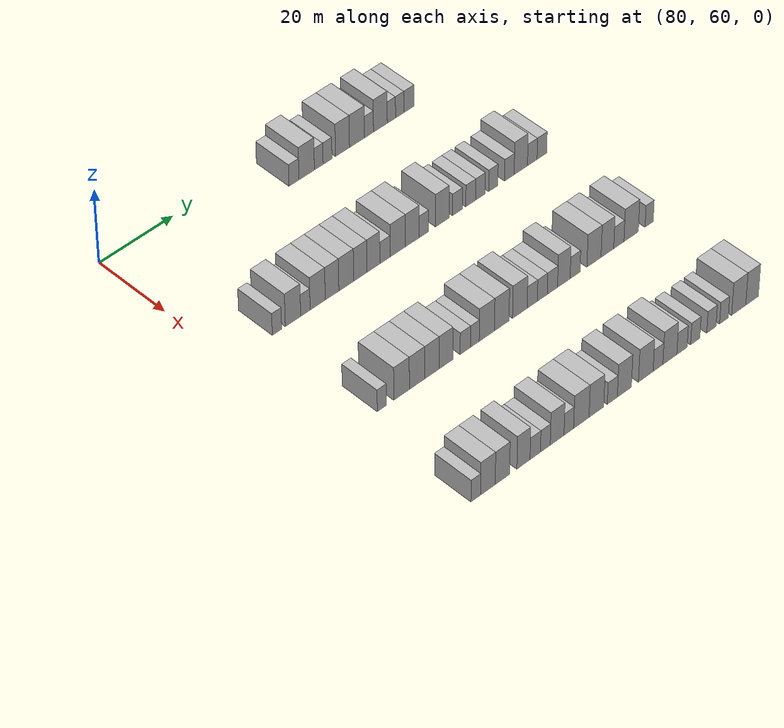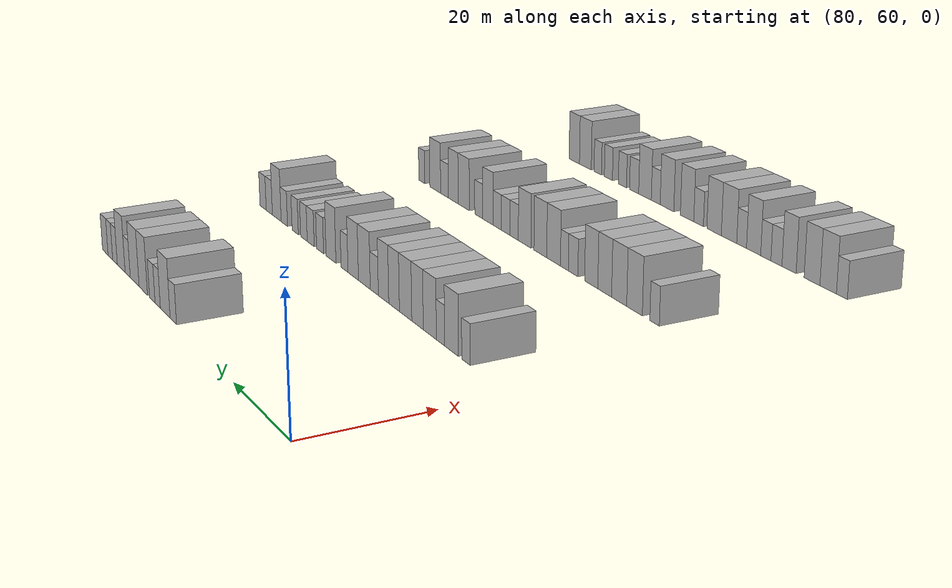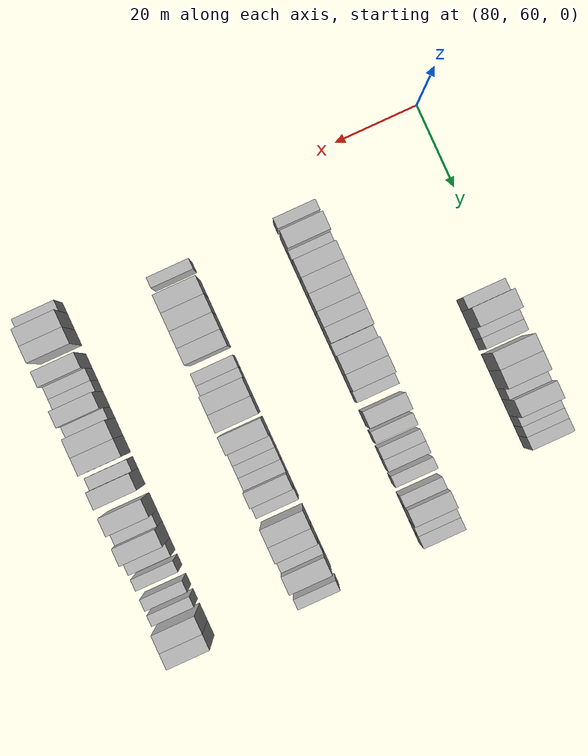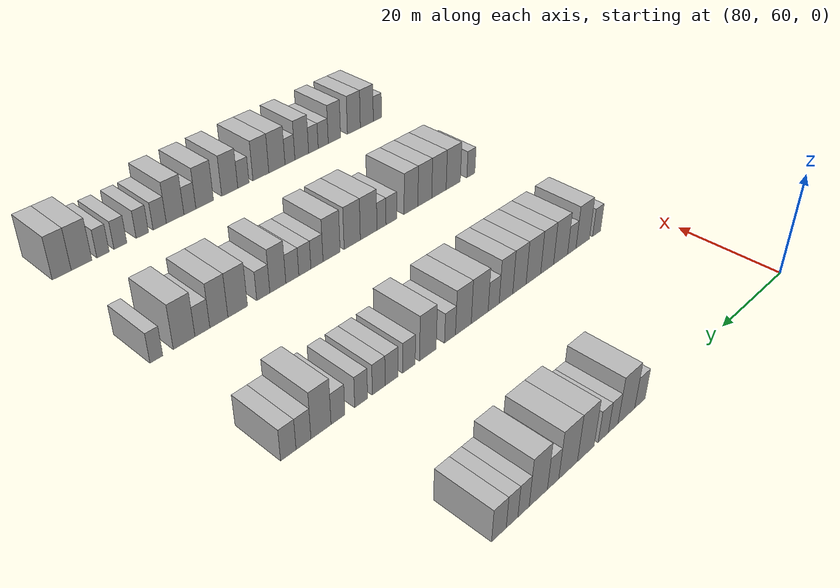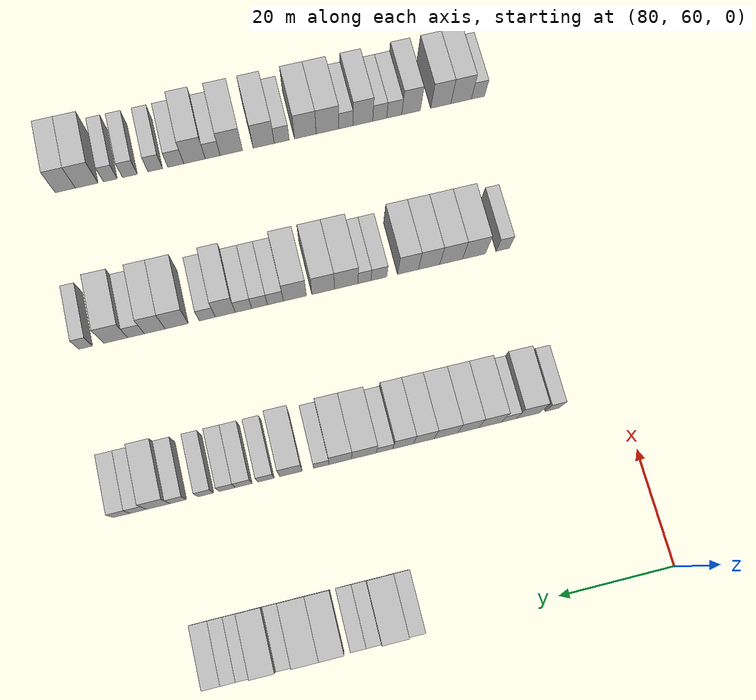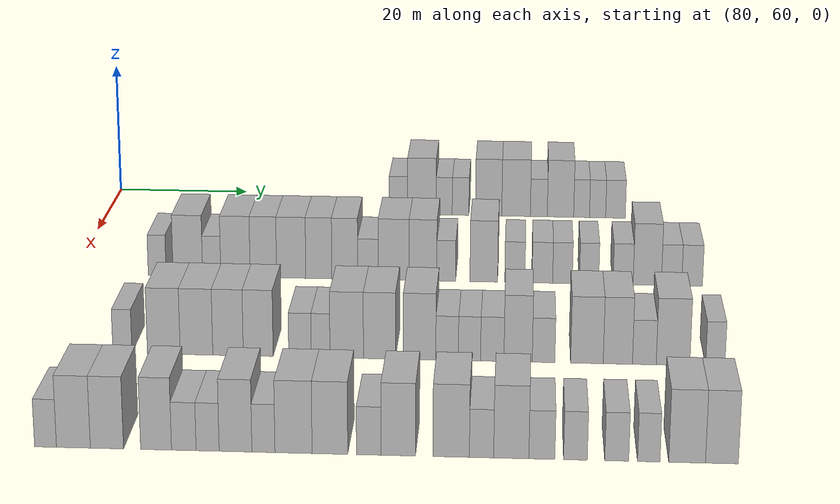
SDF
<sdf version="1.6">
 <world name="default">
  <model name="building_595">
   <static>1</static>
   <pose>85.0000 104.5516 0 0.000000 0.000000 0.000000</pose>
   <link name="link">
    <pose>0 0 3.00 0 0 0</pose>
    <collision name="collision"><geometry><box><size>10.0000 2.8184 6.0000</size></box></geometry></collision>
    <visual name="visual">
     <cast_shadows>0</cast_shadows>
     <geometry><box><size>10.0000 2.8184 6.0000</size></box></geometry>
     <material>
      <script>
       <uri>model://HANNAS_wall/materials/scripts</uri>
       <uri>model://HANNAS_wall/materials/textures</uri>
       <name>vrc/HANNAS_wall</name>
      </script>
     </material>
    </visual>
   </link>
  </model>
  <model name="building_596">
   <static>1</static>
   <pose>85.0000 108.1537 0 0.000000 0.000000 0.000000</pose>
   <link name="link">
    <pose>0 0 4.50 0 0 0</pose>
    <collision name="collision"><geometry><box><size>10.0000 4.3857 9.0000</size></box></geometry></collision>
    <visual name="visual">
     <cast_shadows>0</cast_shadows>
     <geometry><box><size>10.0000 4.3857 9.0000</size></box></geometry>
     <material>
      <script>
       <uri>model://HANNAS_wall/materials/scripts</uri>
       <uri>model://HANNAS_wall/materials/textures</uri>
       <name>vrc/HANNAS_wall</name>
      </script>
     </material>
    </visual>
   </link>
  </model>
  <model name="building_597">
   <static>1</static>
   <pose>85.0000 111.5749 0 0.000000 0.000000 0.000000</pose>
   <link name="link">
    <pose>0 0 3.00 0 0 0</pose>
    <collision name="collision"><geometry><box><size>10.0000 2.4568 6.0000</size></box></geometry></collision>
    <visual name="visual">
     <cast_shadows>0</cast_shadows>
     <geometry><box><size>10.0000 2.4568 6.0000</size></box></geometry>
     <material>
      <script>
       <uri>model://HANNAS_wall/materials/scripts</uri>
       <uri>model://HANNAS_wall/materials/textures</uri>
       <name>vrc/HANNAS_wall</name>
      </script>
     </material>
    </visual>
   </link>
  </model>
  <model name="building_598">
   <static>1</static>
   <pose>85.0000 114.0803 0 0.000000 0.000000 0.000000</pose>
   <link name="link">
    <pose>0 0 3.00 0 0 0</pose>
    <collision name="collision"><geometry><box><size>10.0000 2.5540 6.0000</size></box></geometry></collision>
    <visual name="visual">
     <cast_shadows>0</cast_shadows>
     <geometry><box><size>10.0000 2.5540 6.0000</size></box></geometry>
     <material>
      <script>
       <uri>model://HANNAS_wall/materials/scripts</uri>
       <uri>model://HANNAS_wall/materials/textures</uri>
       <name>vrc/HANNAS_wall</name>
      </script>
     </material>
    </visual>
   </link>
  </model>
  <model name="building_599">
   <static>1</static>
   <pose>85.0000 118.3711 0 0.000000 0.000000 0.000000</pose>
   <link name="link">
    <pose>0 0 4.50 0 0 0</pose>
    <collision name="collision"><geometry><box><size>10.0000 4.0275 9.0000</size></box></geometry></collision>
    <visual name="visual">
     <cast_shadows>0</cast_shadows>
     <geometry><box><size>10.0000 4.0275 9.0000</size></box></geometry>
     <material>
      <script>
       <uri>model://HANNAS_wall/materials/scripts</uri>
       <uri>model://HANNAS_wall/materials/textures</uri>
       <name>vrc/HANNAS_wall</name>
      </script>
     </material>
    </visual>
   </link>
  </model>
  <model name="building_600">
   <static>1</static>
   <pose>85.0000 122.5619 0 0.000000 0.000000 0.000000</pose>
   <link name="link">
    <pose>0 0 4.50 0 0 0</pose>
    <collision name="collision"><geometry><box><size>10.0000 4.3542 9.0000</size></box></geometry></collision>
    <visual name="visual">
     <cast_shadows>0</cast_shadows>
     <geometry><box><size>10.0000 4.3542 9.0000</size></box></geometry>
     <material>
      <script>
       <uri>model://HANNAS_wall/materials/scripts</uri>
       <uri>model://HANNAS_wall/materials/textures</uri>
       <name>vrc/HANNAS_wall</name>
      </script>
     </material>
    </visual>
   </link>
  </model>
  <model name="building_601">
   <static>1</static>
   <pose>85.0000 126.0292 0 0.000000 0.000000 0.000000</pose>
   <link name="link">
    <pose>0 0 3.00 0 0 0</pose>
    <collision name="collision"><geometry><box><size>10.0000 2.5804 6.0000</size></box></geometry></collision>
    <visual name="visual">
     <cast_shadows>0</cast_shadows>
     <geometry><box><size>10.0000 2.5804 6.0000</size></box></geometry>
     <material>
      <script>
       <uri>model://HANNAS_wall/materials/scripts</uri>
       <uri>model://HANNAS_wall/materials/textures</uri>
       <name>vrc/HANNAS_wall</name>
      </script>
     </material>
    </visual>
   </link>
  </model>
  <model name="building_602">
   <static>1</static>
   <pose>85.0000 129.3282 0 0.000000 0.000000 0.000000</pose>
   <link name="link">
    <pose>0 0 4.50 0 0 0</pose>
    <collision name="collision"><geometry><box><size>10.0000 4.0177 9.0000</size></box></geometry></collision>
    <visual name="visual">
     <cast_shadows>0</cast_shadows>
     <geometry><box><size>10.0000 4.0177 9.0000</size></box></geometry>
     <material>
      <script>
       <uri>model://HANNAS_wall/materials/scripts</uri>
       <uri>model://HANNAS_wall/materials/textures</uri>
       <name>vrc/HANNAS_wall</name>
      </script>
     </material>
    </visual>
   </link>
  </model>
  <model name="building_603">
   <static>1</static>
   <pose>85.0000 132.5418 0 0.000000 0.000000 0.000000</pose>
   <link name="link">
    <pose>0 0 3.00 0 0 0</pose>
    <collision name="collision"><geometry><box><size>10.0000 2.4095 6.0000</size></box></geometry></collision>
    <visual name="visual">
     <cast_shadows>0</cast_shadows>
     <geometry><box><size>10.0000 2.4095 6.0000</size></box></geometry>
     <material>
      <script>
       <uri>model://HANNAS_wall/materials/scripts</uri>
       <uri>model://HANNAS_wall/materials/textures</uri>
       <name>vrc/HANNAS_wall</name>
      </script>
     </material>
    </visual>
   </link>
  </model>
  <model name="building_604">
   <static>1</static>
   <pose>85.0000 134.9717 0 0.000000 0.000000 0.000000</pose>
   <link name="link">
    <pose>0 0 3.00 0 0 0</pose>
    <collision name="collision"><geometry><box><size>10.0000 2.4503 6.0000</size></box></geometry></collision>
    <visual name="visual">
     <cast_shadows>0</cast_shadows>
     <geometry><box><size>10.0000 2.4503 6.0000</size></box></geometry>
     <material>
      <script>
       <uri>model://HANNAS_wall/materials/scripts</uri>
       <uri>model://HANNAS_wall/materials/textures</uri>
       <name>vrc/HANNAS_wall</name>
      </script>
     </material>
    </visual>
   </link>
  </model>
  <model name="building_605">
   <static>1</static>
   <pose>85.0000 137.6892 0 0.000000 0.000000 0.000000</pose>
   <link name="link">
    <pose>0 0 3.00 0 0 0</pose>
    <collision name="collision"><geometry><box><size>10.0000 2.9847 6.0000</size></box></geometry></collision>
    <visual name="visual">
     <cast_shadows>0</cast_shadows>
     <geometry><box><size>10.0000 2.9847 6.0000</size></box></geometry>
     <material>
      <script>
       <uri>model://HANNAS_wall/materials/scripts</uri>
       <uri>model://HANNAS_wall/materials/textures</uri>
       <name>vrc/HANNAS_wall</name>
      </script>
     </material>
    </visual>
   </link>
  </model>
  <model name="building_806">
   <static>1</static>
   <pose>115.0000 72.0782 0 0.000000 0.000000 0.000000</pose>
   <link name="link">
    <pose>0 0 3.00 0 0 0</pose>
    <collision name="collision"><geometry><box><size>10.0000 2.5373 6.0000</size></box></geometry></collision>
    <visual name="visual">
     <cast_shadows>0</cast_shadows>
     <geometry><box><size>10.0000 2.5373 6.0000</size></box></geometry>
     <material>
      <script>
       <uri>model://HANNAS_wall/materials/scripts</uri>
       <uri>model://HANNAS_wall/materials/textures</uri>
       <name>vrc/HANNAS_wall</name>
      </script>
     </material>
    </visual>
   </link>
  </model>
  <model name="building_807">
   <static>1</static>
   <pose>115.0000 76.4453 0 0.000000 0.000000 0.000000</pose>
   <link name="link">
    <pose>0 0 4.50 0 0 0</pose>
    <collision name="collision"><geometry><box><size>10.0000 4.1969 9.0000</size></box></geometry></collision>
    <visual name="visual">
     <cast_shadows>0</cast_shadows>
     <geometry><box><size>10.0000 4.1969 9.0000</size></box></geometry>
     <material>
      <script>
       <uri>model://HANNAS_wall/materials/scripts</uri>
       <uri>model://HANNAS_wall/materials/textures</uri>
       <name>vrc/HANNAS_wall</name>
      </script>
     </material>
    </visual>
   </link>
  </model>
  <model name="building_808">
   <static>1</static>
   <pose>115.0000 79.8328 0 0.000000 0.000000 0.000000</pose>
   <link name="link">
    <pose>0 0 3.00 0 0 0</pose>
    <collision name="collision"><geometry><box><size>10.0000 2.5781 6.0000</size></box></geometry></collision>
    <visual name="visual">
     <cast_shadows>0</cast_shadows>
     <geometry><box><size>10.0000 2.5781 6.0000</size></box></geometry>
     <material>
      <script>
       <uri>model://HANNAS_wall/materials/scripts</uri>
       <uri>model://HANNAS_wall/materials/textures</uri>
       <name>vrc/HANNAS_wall</name>
      </script>
     </material>
    </visual>
   </link>
  </model>
  <model name="building_809">
   <static>1</static>
   <pose>115.0000 83.2066 0 0.000000 0.000000 0.000000</pose>
   <link name="link">
    <pose>0 0 4.50 0 0 0</pose>
    <collision name="collision"><geometry><box><size>10.0000 4.1695 9.0000</size></box></geometry></collision>
    <visual name="visual">
     <cast_shadows>0</cast_shadows>
     <geometry><box><size>10.0000 4.1695 9.0000</size></box></geometry>
     <material>
      <script>
       <uri>model://HANNAS_wall/materials/scripts</uri>
       <uri>model://HANNAS_wall/materials/textures</uri>
       <name>vrc/HANNAS_wall</name>
      </script>
     </material>
    </visual>
   </link>
  </model>
  <model name="building_810">
   <static>1</static>
   <pose>115.0000 87.1659 0 0.000000 0.000000 0.000000</pose>
   <link name="link">
    <pose>0 0 4.50 0 0 0</pose>
    <collision name="collision"><geometry><box><size>10.0000 3.7492 9.0000</size></box></geometry></collision>
    <visual name="visual">
     <cast_shadows>0</cast_shadows>
     <geometry><box><size>10.0000 3.7492 9.0000</size></box></geometry>
     <material>
      <script>
       <uri>model://HANNAS_wall/materials/scripts</uri>
       <uri>model://HANNAS_wall/materials/textures</uri>
       <name>vrc/HANNAS_wall</name>
      </script>
     </material>
    </visual>
   </link>
  </model>
  <model name="building_811">
   <static>1</static>
   <pose>115.0000 91.1064 0 0.000000 0.000000 0.000000</pose>
   <link name="link">
    <pose>0 0 4.50 0 0 0</pose>
    <collision name="collision"><geometry><box><size>10.0000 4.1318 9.0000</size></box></geometry></collision>
    <visual name="visual">
     <cast_shadows>0</cast_shadows>
     <geometry><box><size>10.0000 4.1318 9.0000</size></box></geometry>
     <material>
      <script>
       <uri>model://HANNAS_wall/materials/scripts</uri>
       <uri>model://HANNAS_wall/materials/textures</uri>
       <name>vrc/HANNAS_wall</name>
      </script>
     </material>
    </visual>
   </link>
  </model>
  <model name="building_812">
   <static>1</static>
   <pose>115.0000 95.0087 0 0.000000 0.000000 0.000000</pose>
   <link name="link">
    <pose>0 0 4.50 0 0 0</pose>
    <collision name="collision"><geometry><box><size>10.0000 3.6727 9.0000</size></box></geometry></collision>
    <visual name="visual">
     <cast_shadows>0</cast_shadows>
     <geometry><box><size>10.0000 3.6727 9.0000</size></box></geometry>
     <material>
      <script>
       <uri>model://HANNAS_wall/materials/scripts</uri>
       <uri>model://HANNAS_wall/materials/textures</uri>
       <name>vrc/HANNAS_wall</name>
      </script>
     </material>
    </visual>
   </link>
  </model>
  <model name="building_813">
   <static>1</static>
   <pose>115.0000 98.6681 0 0.000000 0.000000 0.000000</pose>
   <link name="link">
    <pose>0 0 4.50 0 0 0</pose>
    <collision name="collision"><geometry><box><size>10.0000 3.6460 9.0000</size></box></geometry></collision>
    <visual name="visual">
     <cast_shadows>0</cast_shadows>
     <geometry><box><size>10.0000 3.6460 9.0000</size></box></geometry>
     <material>
      <script>
       <uri>model://HANNAS_wall/materials/scripts</uri>
       <uri>model://HANNAS_wall/materials/textures</uri>
       <name>vrc/HANNAS_wall</name>
      </script>
     </material>
    </visual>
   </link>
  </model>
  <model name="building_814">
   <static>1</static>
   <pose>115.0000 101.9382 0 0.000000 0.000000 0.000000</pose>
   <link name="link">
    <pose>0 0 3.00 0 0 0</pose>
    <collision name="collision"><geometry><box><size>10.0000 2.8942 6.0000</size></box></geometry></collision>
    <visual name="visual">
     <cast_shadows>0</cast_shadows>
     <geometry><box><size>10.0000 2.8942 6.0000</size></box></geometry>
     <material>
      <script>
       <uri>model://HANNAS_wall/materials/scripts</uri>
       <uri>model://HANNAS_wall/materials/textures</uri>
       <name>vrc/HANNAS_wall</name>
      </script>
     </material>
    </visual>
   </link>
  </model>
  <model name="building_815">
   <static>1</static>
   <pose>115.0000 105.5491 0 0.000000 0.000000 0.000000</pose>
   <link name="link">
    <pose>0 0 4.50 0 0 0</pose>
    <collision name="collision"><geometry><box><size>10.0000 4.3276 9.0000</size></box></geometry></collision>
    <visual name="visual">
     <cast_shadows>0</cast_shadows>
     <geometry><box><size>10.0000 4.3276 9.0000</size></box></geometry>
     <material>
      <script>
       <uri>model://HANNAS_wall/materials/scripts</uri>
       <uri>model://HANNAS_wall/materials/textures</uri>
       <name>vrc/HANNAS_wall</name>
      </script>
     </material>
    </visual>
   </link>
  </model>
  <model name="building_816">
   <static>1</static>
   <pose>115.0000 109.6727 0 0.000000 0.000000 0.000000</pose>
   <link name="link">
    <pose>0 0 4.50 0 0 0</pose>
    <collision name="collision"><geometry><box><size>10.0000 3.9196 9.0000</size></box></geometry></collision>
    <visual name="visual">
     <cast_shadows>0</cast_shadows>
     <geometry><box><size>10.0000 3.9196 9.0000</size></box></geometry>
     <material>
      <script>
       <uri>model://HANNAS_wall/materials/scripts</uri>
       <uri>model://HANNAS_wall/materials/textures</uri>
       <name>vrc/HANNAS_wall</name>
      </script>
     </material>
    </visual>
   </link>
  </model>
  <model name="building_817">
   <static>1</static>
   <pose>115.0000 112.9589 0 0.000000 0.000000 0.000000</pose>
   <link name="link">
    <pose>0 0 3.00 0 0 0</pose>
    <collision name="collision"><geometry><box><size>10.0000 2.6527 6.0000</size></box></geometry></collision>
    <visual name="visual">
     <cast_shadows>0</cast_shadows>
     <geometry><box><size>10.0000 2.6527 6.0000</size></box></geometry>
     <material>
      <script>
       <uri>model://HANNAS_wall/materials/scripts</uri>
       <uri>model://HANNAS_wall/materials/textures</uri>
       <name>vrc/HANNAS_wall</name>
      </script>
     </material>
    </visual>
   </link>
  </model>
  <model name="building_818">
   <static>1</static>
   <pose>115.0000 118.2263 0 0.000000 0.000000 0.000000</pose>
   <link name="link">
    <pose>0 0 4.50 0 0 0</pose>
    <collision name="collision"><geometry><box><size>10.0000 3.8821 9.0000</size></box></geometry></collision>
    <visual name="visual">
     <cast_shadows>0</cast_shadows>
     <geometry><box><size>10.0000 3.8821 9.0000</size></box></geometry>
     <material>
      <script>
       <uri>model://HANNAS_wall/materials/scripts</uri>
       <uri>model://HANNAS_wall/materials/textures</uri>
       <name>vrc/HANNAS_wall</name>
      </script>
     </material>
    </visual>
   </link>
  </model>
  <model name="building_819">
   <static>1</static>
   <pose>115.0000 122.5768 0 0.000000 0.000000 0.000000</pose>
   <link name="link">
    <pose>0 0 3.00 0 0 0</pose>
    <collision name="collision"><geometry><box><size>10.0000 2.8190 6.0000</size></box></geometry></collision>
    <visual name="visual">
     <cast_shadows>0</cast_shadows>
     <geometry><box><size>10.0000 2.8190 6.0000</size></box></geometry>
     <material>
      <script>
       <uri>model://HANNAS_wall/materials/scripts</uri>
       <uri>model://HANNAS_wall/materials/textures</uri>
       <name>vrc/HANNAS_wall</name>
      </script>
     </material>
    </visual>
   </link>
  </model>
  <model name="building_820">
   <static>1</static>
   <pose>115.0000 126.4265 0 0.000000 0.000000 0.000000</pose>
   <link name="link">
    <pose>0 0 3.00 0 0 0</pose>
    <collision name="collision"><geometry><box><size>10.0000 2.8803 6.0000</size></box></geometry></collision>
    <visual name="visual">
     <cast_shadows>0</cast_shadows>
     <geometry><box><size>10.0000 2.8803 6.0000</size></box></geometry>
     <material>
      <script>
       <uri>model://HANNAS_wall/materials/scripts</uri>
       <uri>model://HANNAS_wall/materials/textures</uri>
       <name>vrc/HANNAS_wall</name>
      </script>
     </material>
    </visual>
   </link>
  </model>
  <model name="building_821">
   <static>1</static>
   <pose>115.0000 129.2394 0 0.000000 0.000000 0.000000</pose>
   <link name="link">
    <pose>0 0 3.00 0 0 0</pose>
    <collision name="collision"><geometry><box><size>10.0000 2.7455 6.0000</size></box></geometry></collision>
    <visual name="visual">
     <cast_shadows>0</cast_shadows>
     <geometry><box><size>10.0000 2.7455 6.0000</size></box></geometry>
     <material>
      <script>
       <uri>model://HANNAS_wall/materials/scripts</uri>
       <uri>model://HANNAS_wall/materials/textures</uri>
       <name>vrc/HANNAS_wall</name>
      </script>
     </material>
    </visual>
   </link>
  </model>
  <model name="building_822">
   <static>1</static>
   <pose>115.0000 132.9535 0 0.000000 0.000000 0.000000</pose>
   <link name="link">
    <pose>0 0 3.00 0 0 0</pose>
    <collision name="collision"><geometry><box><size>10.0000 2.6826 6.0000</size></box></geometry></collision>
    <visual name="visual">
     <cast_shadows>0</cast_shadows>
     <geometry><box><size>10.0000 2.6826 6.0000</size></box></geometry>
     <material>
      <script>
       <uri>model://HANNAS_wall/materials/scripts</uri>
       <uri>model://HANNAS_wall/materials/textures</uri>
       <name>vrc/HANNAS_wall</name>
      </script>
     </material>
    </visual>
   </link>
  </model>
  <model name="building_823">
   <static>1</static>
   <pose>115.0000 137.6912 0 0.000000 0.000000 0.000000</pose>
   <link name="link">
    <pose>0 0 3.00 0 0 0</pose>
    <collision name="collision"><geometry><box><size>10.0000 2.7928 6.0000</size></box></geometry></collision>
    <visual name="visual">
     <cast_shadows>0</cast_shadows>
     <geometry><box><size>10.0000 2.7928 6.0000</size></box></geometry>
     <material>
      <script>
       <uri>model://HANNAS_wall/materials/scripts</uri>
       <uri>model://HANNAS_wall/materials/textures</uri>
       <name>vrc/HANNAS_wall</name>
      </script>
     </material>
    </visual>
   </link>
  </model>
  <model name="building_824">
   <static>1</static>
   <pose>115.0000 141.0551 0 0.000000 0.000000 0.000000</pose>
   <link name="link">
    <pose>0 0 4.50 0 0 0</pose>
    <collision name="collision"><geometry><box><size>10.0000 3.9350 9.0000</size></box></geometry></collision>
    <visual name="visual">
     <cast_shadows>0</cast_shadows>
     <geometry><box><size>10.0000 3.9350 9.0000</size></box></geometry>
     <material>
      <script>
       <uri>model://HANNAS_wall/materials/scripts</uri>
       <uri>model://HANNAS_wall/materials/textures</uri>
       <name>vrc/HANNAS_wall</name>
      </script>
     </material>
    </visual>
   </link>
  </model>
  <model name="building_825">
   <static>1</static>
   <pose>115.0000 144.4380 0 0.000000 0.000000 0.000000</pose>
   <link name="link">
    <pose>0 0 3.00 0 0 0</pose>
    <collision name="collision"><geometry><box><size>10.0000 2.8308 6.0000</size></box></geometry></collision>
    <visual name="visual">
     <cast_shadows>0</cast_shadows>
     <geometry><box><size>10.0000 2.8308 6.0000</size></box></geometry>
     <material>
      <script>
       <uri>model://HANNAS_wall/materials/scripts</uri>
       <uri>model://HANNAS_wall/materials/textures</uri>
       <name>vrc/HANNAS_wall</name>
      </script>
     </material>
    </visual>
   </link>
  </model>
  <model name="building_826">
   <static>1</static>
   <pose>115.0000 147.2910 0 0.000000 0.000000 0.000000</pose>
   <link name="link">
    <pose>0 0 3.00 0 0 0</pose>
    <collision name="collision"><geometry><box><size>10.0000 2.8752 6.0000</size></box></geometry></collision>
    <visual name="visual">
     <cast_shadows>0</cast_shadows>
     <geometry><box><size>10.0000 2.8752 6.0000</size></box></geometry>
     <material>
      <script>
       <uri>model://HANNAS_wall/materials/scripts</uri>
       <uri>model://HANNAS_wall/materials/textures</uri>
       <name>vrc/HANNAS_wall</name>
      </script>
     </material>
    </visual>
   </link>
  </model>
  <model name="building_1049">
   <static>1</static>
   <pose>145.0000 72.3150 0 0.000000 0.000000 0.000000</pose>
   <link name="link">
    <pose>0 0 3.00 0 0 0</pose>
    <collision name="collision"><geometry><box><size>10.0000 2.4802 6.0000</size></box></geometry></collision>
    <visual name="visual">
     <cast_shadows>0</cast_shadows>
     <geometry><box><size>10.0000 2.4802 6.0000</size></box></geometry>
     <material>
      <script>
       <uri>model://HANNAS_wall/materials/scripts</uri>
       <uri>model://HANNAS_wall/materials/textures</uri>
       <name>vrc/HANNAS_wall</name>
      </script>
     </material>
    </visual>
   </link>
  </model>
  <model name="building_1050">
   <static>1</static>
   <pose>145.0000 77.6808 0 0.000000 0.000000 0.000000</pose>
   <link name="link">
    <pose>0 0 4.50 0 0 0</pose>
    <collision name="collision"><geometry><box><size>10.0000 4.2514 9.0000</size></box></geometry></collision>
    <visual name="visual">
     <cast_shadows>0</cast_shadows>
     <geometry><box><size>10.0000 4.2514 9.0000</size></box></geometry>
     <material>
      <script>
       <uri>model://HANNAS_wall/materials/scripts</uri>
       <uri>model://HANNAS_wall/materials/textures</uri>
       <name>vrc/HANNAS_wall</name>
      </script>
     </material>
    </visual>
   </link>
  </model>
  <model name="building_1051">
   <static>1</static>
   <pose>145.0000 81.9154 0 0.000000 0.000000 0.000000</pose>
   <link name="link">
    <pose>0 0 4.50 0 0 0</pose>
    <collision name="collision"><geometry><box><size>10.0000 4.2176 9.0000</size></box></geometry></collision>
    <visual name="visual">
     <cast_shadows>0</cast_shadows>
     <geometry><box><size>10.0000 4.2176 9.0000</size></box></geometry>
     <material>
      <script>
       <uri>model://HANNAS_wall/materials/scripts</uri>
       <uri>model://HANNAS_wall/materials/textures</uri>
       <name>vrc/HANNAS_wall</name>
      </script>
     </material>
    </visual>
   </link>
  </model>
  <model name="building_1052">
   <static>1</static>
   <pose>145.0000 85.9948 0 0.000000 0.000000 0.000000</pose>
   <link name="link">
    <pose>0 0 4.50 0 0 0</pose>
    <collision name="collision"><geometry><box><size>10.0000 3.9412 9.0000</size></box></geometry></collision>
    <visual name="visual">
     <cast_shadows>0</cast_shadows>
     <geometry><box><size>10.0000 3.9412 9.0000</size></box></geometry>
     <material>
      <script>
       <uri>model://HANNAS_wall/materials/scripts</uri>
       <uri>model://HANNAS_wall/materials/textures</uri>
       <name>vrc/HANNAS_wall</name>
      </script>
     </material>
    </visual>
   </link>
  </model>
  <model name="building_1053">
   <static>1</static>
   <pose>145.0000 89.8933 0 0.000000 0.000000 0.000000</pose>
   <link name="link">
    <pose>0 0 4.50 0 0 0</pose>
    <collision name="collision"><geometry><box><size>10.0000 3.8558 9.0000</size></box></geometry></collision>
    <visual name="visual">
     <cast_shadows>0</cast_shadows>
     <geometry><box><size>10.0000 3.8558 9.0000</size></box></geometry>
     <material>
      <script>
       <uri>model://HANNAS_wall/materials/scripts</uri>
       <uri>model://HANNAS_wall/materials/textures</uri>
       <name>vrc/HANNAS_wall</name>
      </script>
     </material>
    </visual>
   </link>
  </model>
  <model name="building_1054">
   <static>1</static>
   <pose>145.0000 95.2702 0 0.000000 0.000000 0.000000</pose>
   <link name="link">
    <pose>0 0 3.00 0 0 0</pose>
    <collision name="collision"><geometry><box><size>10.0000 2.8981 6.0000</size></box></geometry></collision>
    <visual name="visual">
     <cast_shadows>0</cast_shadows>
     <geometry><box><size>10.0000 2.8981 6.0000</size></box></geometry>
     <material>
      <script>
       <uri>model://HANNAS_wall/materials/scripts</uri>
       <uri>model://HANNAS_wall/materials/textures</uri>
       <name>vrc/HANNAS_wall</name>
      </script>
     </material>
    </visual>
   </link>
  </model>
  <model name="building_1055">
   <static>1</static>
   <pose>145.0000 97.9241 0 0.000000 0.000000 0.000000</pose>
   <link name="link">
    <pose>0 0 3.00 0 0 0</pose>
    <collision name="collision"><geometry><box><size>10.0000 2.4098 6.0000</size></box></geometry></collision>
    <visual name="visual">
     <cast_shadows>0</cast_shadows>
     <geometry><box><size>10.0000 2.4098 6.0000</size></box></geometry>
     <material>
      <script>
       <uri>model://HANNAS_wall/materials/scripts</uri>
       <uri>model://HANNAS_wall/materials/textures</uri>
       <name>vrc/HANNAS_wall</name>
      </script>
     </material>
    </visual>
   </link>
  </model>
  <model name="building_1056">
   <static>1</static>
   <pose>145.0000 101.2803 0 0.000000 0.000000 0.000000</pose>
   <link name="link">
    <pose>0 0 4.50 0 0 0</pose>
    <collision name="collision"><geometry><box><size>10.0000 4.3025 9.0000</size></box></geometry></collision>
    <visual name="visual">
     <cast_shadows>0</cast_shadows>
     <geometry><box><size>10.0000 4.3025 9.0000</size></box></geometry>
     <material>
      <script>
       <uri>model://HANNAS_wall/materials/scripts</uri>
       <uri>model://HANNAS_wall/materials/textures</uri>
       <name>vrc/HANNAS_wall</name>
      </script>
     </material>
    </visual>
   </link>
  </model>
  <model name="building_1057">
   <static>1</static>
   <pose>145.0000 105.4785 0 0.000000 0.000000 0.000000</pose>
   <link name="link">
    <pose>0 0 4.50 0 0 0</pose>
    <collision name="collision"><geometry><box><size>10.0000 4.0941 9.0000</size></box></geometry></collision>
    <visual name="visual">
     <cast_shadows>0</cast_shadows>
     <geometry><box><size>10.0000 4.0941 9.0000</size></box></geometry>
     <material>
      <script>
       <uri>model://HANNAS_wall/materials/scripts</uri>
       <uri>model://HANNAS_wall/materials/textures</uri>
       <name>vrc/HANNAS_wall</name>
      </script>
     </material>
    </visual>
   </link>
  </model>
  <model name="building_1058">
   <static>1</static>
   <pose>145.0000 110.6120 0 0.000000 0.000000 0.000000</pose>
   <link name="link">
    <pose>0 0 4.50 0 0 0</pose>
    <collision name="collision"><geometry><box><size>10.0000 4.1729 9.0000</size></box></geometry></collision>
    <visual name="visual">
     <cast_shadows>0</cast_shadows>
     <geometry><box><size>10.0000 4.1729 9.0000</size></box></geometry>
     <material>
      <script>
       <uri>model://HANNAS_wall/materials/scripts</uri>
       <uri>model://HANNAS_wall/materials/textures</uri>
       <name>vrc/HANNAS_wall</name>
      </script>
     </material>
    </visual>
   </link>
  </model>
  <model name="building_1059">
   <static>1</static>
   <pose>145.0000 114.1457 0 0.000000 0.000000 0.000000</pose>
   <link name="link">
    <pose>0 0 3.00 0 0 0</pose>
    <collision name="collision"><geometry><box><size>10.0000 2.8944 6.0000</size></box></geometry></collision>
    <visual name="visual">
     <cast_shadows>0</cast_shadows>
     <geometry><box><size>10.0000 2.8944 6.0000</size></box></geometry>
     <material>
      <script>
       <uri>model://HANNAS_wall/materials/scripts</uri>
       <uri>model://HANNAS_wall/materials/textures</uri>
       <name>vrc/HANNAS_wall</name>
      </script>
     </material>
    </visual>
   </link>
  </model>
  <model name="building_1060">
   <static>1</static>
   <pose>145.0000 117.0094 0 0.000000 0.000000 0.000000</pose>
   <link name="link">
    <pose>0 0 3.00 0 0 0</pose>
    <collision name="collision"><geometry><box><size>10.0000 2.8330 6.0000</size></box></geometry></collision>
    <visual name="visual">
     <cast_shadows>0</cast_shadows>
     <geometry><box><size>10.0000 2.8330 6.0000</size></box></geometry>
     <material>
      <script>
       <uri>model://HANNAS_wall/materials/scripts</uri>
       <uri>model://HANNAS_wall/materials/textures</uri>
       <name>vrc/HANNAS_wall</name>
      </script>
     </material>
    </visual>
   </link>
  </model>
  <model name="building_1061">
   <static>1</static>
   <pose>145.0000 119.9153 0 0.000000 0.000000 0.000000</pose>
   <link name="link">
    <pose>0 0 3.00 0 0 0</pose>
    <collision name="collision"><geometry><box><size>10.0000 2.9789 6.0000</size></box></geometry></collision>
    <visual name="visual">
     <cast_shadows>0</cast_shadows>
     <geometry><box><size>10.0000 2.9789 6.0000</size></box></geometry>
     <material>
      <script>
       <uri>model://HANNAS_wall/materials/scripts</uri>
       <uri>model://HANNAS_wall/materials/textures</uri>
       <name>vrc/HANNAS_wall</name>
      </script>
     </material>
    </visual>
   </link>
  </model>
  <model name="building_1062">
   <static>1</static>
   <pose>145.0000 123.2062 0 0.000000 0.000000 0.000000</pose>
   <link name="link">
    <pose>0 0 4.50 0 0 0</pose>
    <collision name="collision"><geometry><box><size>10.0000 3.6029 9.0000</size></box></geometry></collision>
    <visual name="visual">
     <cast_shadows>0</cast_shadows>
     <geometry><box><size>10.0000 3.6029 9.0000</size></box></geometry>
     <material>
      <script>
       <uri>model://HANNAS_wall/materials/scripts</uri>
       <uri>model://HANNAS_wall/materials/textures</uri>
       <name>vrc/HANNAS_wall</name>
      </script>
     </material>
    </visual>
   </link>
  </model>
  <model name="building_1063">
   <static>1</static>
   <pose>145.0000 126.4479 0 0.000000 0.000000 0.000000</pose>
   <link name="link">
    <pose>0 0 3.00 0 0 0</pose>
    <collision name="collision"><geometry><box><size>10.0000 2.8804 6.0000</size></box></geometry></collision>
    <visual name="visual">
     <cast_shadows>0</cast_shadows>
     <geometry><box><size>10.0000 2.8804 6.0000</size></box></geometry>
     <material>
      <script>
       <uri>model://HANNAS_wall/materials/scripts</uri>
       <uri>model://HANNAS_wall/materials/textures</uri>
       <name>vrc/HANNAS_wall</name>
      </script>
     </material>
    </visual>
   </link>
  </model>
  <model name="building_1064">
   <static>1</static>
   <pose>145.0000 131.9562 0 0.000000 0.000000 0.000000</pose>
   <link name="link">
    <pose>0 0 4.50 0 0 0</pose>
    <collision name="collision"><geometry><box><size>10.0000 4.1362 9.0000</size></box></geometry></collision>
    <visual name="visual">
     <cast_shadows>0</cast_shadows>
     <geometry><box><size>10.0000 4.1362 9.0000</size></box></geometry>
     <material>
      <script>
       <uri>model://HANNAS_wall/materials/scripts</uri>
       <uri>model://HANNAS_wall/materials/textures</uri>
       <name>vrc/HANNAS_wall</name>
      </script>
     </material>
    </visual>
   </link>
  </model>
  <model name="building_1065">
   <static>1</static>
   <pose>145.0000 135.8804 0 0.000000 0.000000 0.000000</pose>
   <link name="link">
    <pose>0 0 4.50 0 0 0</pose>
    <collision name="collision"><geometry><box><size>10.0000 3.7124 9.0000</size></box></geometry></collision>
    <visual name="visual">
     <cast_shadows>0</cast_shadows>
     <geometry><box><size>10.0000 3.7124 9.0000</size></box></geometry>
     <material>
      <script>
       <uri>model://HANNAS_wall/materials/scripts</uri>
       <uri>model://HANNAS_wall/materials/textures</uri>
       <name>vrc/HANNAS_wall</name>
      </script>
     </material>
    </visual>
   </link>
  </model>
  <model name="building_1066">
   <static>1</static>
   <pose>145.0000 139.2364 0 0.000000 0.000000 0.000000</pose>
   <link name="link">
    <pose>0 0 3.00 0 0 0</pose>
    <collision name="collision"><geometry><box><size>10.0000 2.9996 6.0000</size></box></geometry></collision>
    <visual name="visual">
     <cast_shadows>0</cast_shadows>
     <geometry><box><size>10.0000 2.9996 6.0000</size></box></geometry>
     <material>
      <script>
       <uri>model://HANNAS_wall/materials/scripts</uri>
       <uri>model://HANNAS_wall/materials/textures</uri>
       <name>vrc/HANNAS_wall</name>
      </script>
     </material>
    </visual>
   </link>
  </model>
  <model name="building_1067">
   <static>1</static>
   <pose>145.0000 142.8634 0 0.000000 0.000000 0.000000</pose>
   <link name="link">
    <pose>0 0 4.50 0 0 0</pose>
    <collision name="collision"><geometry><box><size>10.0000 4.2543 9.0000</size></box></geometry></collision>
    <visual name="visual">
     <cast_shadows>0</cast_shadows>
     <geometry><box><size>10.0000 4.2543 9.0000</size></box></geometry>
     <material>
      <script>
       <uri>model://HANNAS_wall/materials/scripts</uri>
       <uri>model://HANNAS_wall/materials/textures</uri>
       <name>vrc/HANNAS_wall</name>
      </script>
     </material>
    </visual>
   </link>
  </model>
  <model name="building_1068">
   <static>1</static>
   <pose>145.0000 148.2024 0 0.000000 0.000000 0.000000</pose>
   <link name="link">
    <pose>0 0 3.00 0 0 0</pose>
    <collision name="collision"><geometry><box><size>10.0000 2.4237 6.0000</size></box></geometry></collision>
    <visual name="visual">
     <cast_shadows>0</cast_shadows>
     <geometry><box><size>10.0000 2.4237 6.0000</size></box></geometry>
     <material>
      <script>
       <uri>model://HANNAS_wall/materials/scripts</uri>
       <uri>model://HANNAS_wall/materials/textures</uri>
       <name>vrc/HANNAS_wall</name>
      </script>
     </material>
    </visual>
   </link>
  </model>
  <model name="building_1275">
   <static>1</static>
   <pose>175.0000 68.4844 0 0.000000 0.000000 0.000000</pose>
   <link name="link">
    <pose>0 0 3.00 0 0 0</pose>
    <collision name="collision"><geometry><box><size>10.0000 2.5693 6.0000</size></box></geometry></collision>
    <visual name="visual">
     <cast_shadows>0</cast_shadows>
     <geometry><box><size>10.0000 2.5693 6.0000</size></box></geometry>
     <material>
      <script>
       <uri>model://HANNAS_wall/materials/scripts</uri>
       <uri>model://HANNAS_wall/materials/textures</uri>
       <name>vrc/HANNAS_wall</name>
      </script>
     </material>
    </visual>
   </link>
  </model>
  <model name="building_1276">
   <static>1</static>
   <pose>175.0000 71.7574 0 0.000000 0.000000 0.000000</pose>
   <link name="link">
    <pose>0 0 4.50 0 0 0</pose>
    <collision name="collision"><geometry><box><size>10.0000 3.9767 9.0000</size></box></geometry></collision>
    <visual name="visual">
     <cast_shadows>0</cast_shadows>
     <geometry><box><size>10.0000 3.9767 9.0000</size></box></geometry>
     <material>
      <script>
       <uri>model://HANNAS_wall/materials/scripts</uri>
       <uri>model://HANNAS_wall/materials/textures</uri>
       <name>vrc/HANNAS_wall</name>
      </script>
     </material>
    </visual>
   </link>
  </model>
  <model name="building_1277">
   <static>1</static>
   <pose>175.0000 75.6917 0 0.000000 0.000000 0.000000</pose>
   <link name="link">
    <pose>0 0 4.50 0 0 0</pose>
    <collision name="collision"><geometry><box><size>10.0000 3.8918 9.0000</size></box></geometry></collision>
    <visual name="visual">
     <cast_shadows>0</cast_shadows>
     <geometry><box><size>10.0000 3.8918 9.0000</size></box></geometry>
     <material>
      <script>
       <uri>model://HANNAS_wall/materials/scripts</uri>
       <uri>model://HANNAS_wall/materials/textures</uri>
       <name>vrc/HANNAS_wall</name>
      </script>
     </material>
    </visual>
   </link>
  </model>
  <model name="building_1278">
   <static>1</static>
   <pose>175.0000 81.4398 0 0.000000 0.000000 0.000000</pose>
   <link name="link">
    <pose>0 0 4.50 0 0 0</pose>
    <collision name="collision"><geometry><box><size>10.0000 3.6044 9.0000</size></box></geometry></collision>
    <visual name="visual">
     <cast_shadows>0</cast_shadows>
     <geometry><box><size>10.0000 3.6044 9.0000</size></box></geometry>
     <material>
      <script>
       <uri>model://HANNAS_wall/materials/scripts</uri>
       <uri>model://HANNAS_wall/materials/textures</uri>
       <name>vrc/HANNAS_wall</name>
      </script>
     </material>
    </visual>
   </link>
  </model>
  <model name="building_1279">
   <static>1</static>
   <pose>175.0000 84.6780 0 0.000000 0.000000 0.000000</pose>
   <link name="link">
    <pose>0 0 3.00 0 0 0</pose>
    <collision name="collision"><geometry><box><size>10.0000 2.8720 6.0000</size></box></geometry></collision>
    <visual name="visual">
     <cast_shadows>0</cast_shadows>
     <geometry><box><size>10.0000 2.8720 6.0000</size></box></geometry>
     <material>
      <script>
       <uri>model://HANNAS_wall/materials/scripts</uri>
       <uri>model://HANNAS_wall/materials/textures</uri>
       <name>vrc/HANNAS_wall</name>
      </script>
     </material>
    </visual>
   </link>
  </model>
  <model name="building_1280">
   <static>1</static>
   <pose>175.0000 87.4589 0 0.000000 0.000000 0.000000</pose>
   <link name="link">
    <pose>0 0 3.00 0 0 0</pose>
    <collision name="collision"><geometry><box><size>10.0000 2.6898 6.0000</size></box></geometry></collision>
    <visual name="visual">
     <cast_shadows>0</cast_shadows>
     <geometry><box><size>10.0000 2.6898 6.0000</size></box></geometry>
     <material>
      <script>
       <uri>model://HANNAS_wall/materials/scripts</uri>
       <uri>model://HANNAS_wall/materials/textures</uri>
       <name>vrc/HANNAS_wall</name>
      </script>
     </material>
    </visual>
   </link>
  </model>
  <model name="building_1281">
   <static>1</static>
   <pose>175.0000 90.7094 0 0.000000 0.000000 0.000000</pose>
   <link name="link">
    <pose>0 0 4.50 0 0 0</pose>
    <collision name="collision"><geometry><box><size>10.0000 3.8112 9.0000</size></box></geometry></collision>
    <visual name="visual">
     <cast_shadows>0</cast_shadows>
     <geometry><box><size>10.0000 3.8112 9.0000</size></box></geometry>
     <material>
      <script>
       <uri>model://HANNAS_wall/materials/scripts</uri>
       <uri>model://HANNAS_wall/materials/textures</uri>
       <name>vrc/HANNAS_wall</name>
      </script>
     </material>
    </visual>
   </link>
  </model>
  <model name="building_1282">
   <static>1</static>
   <pose>175.0000 93.9547 0 0.000000 0.000000 0.000000</pose>
   <link name="link">
    <pose>0 0 3.00 0 0 0</pose>
    <collision name="collision"><geometry><box><size>10.0000 2.6793 6.0000</size></box></geometry></collision>
    <visual name="visual">
     <cast_shadows>0</cast_shadows>
     <geometry><box><size>10.0000 2.6793 6.0000</size></box></geometry>
     <material>
      <script>
       <uri>model://HANNAS_wall/materials/scripts</uri>
       <uri>model://HANNAS_wall/materials/textures</uri>
       <name>vrc/HANNAS_wall</name>
      </script>
     </material>
    </visual>
   </link>
  </model>
  <model name="building_1283">
   <static>1</static>
   <pose>175.0000 97.4492 0 0.000000 0.000000 0.000000</pose>
   <link name="link">
    <pose>0 0 4.50 0 0 0</pose>
    <collision name="collision"><geometry><box><size>10.0000 4.3098 9.0000</size></box></geometry></collision>
    <visual name="visual">
     <cast_shadows>0</cast_shadows>
     <geometry><box><size>10.0000 4.3098 9.0000</size></box></geometry>
     <material>
      <script>
       <uri>model://HANNAS_wall/materials/scripts</uri>
       <uri>model://HANNAS_wall/materials/textures</uri>
       <name>vrc/HANNAS_wall</name>
      </script>
     </material>
    </visual>
   </link>
  </model>
  <model name="building_1284">
   <static>1</static>
   <pose>175.0000 101.6695 0 0.000000 0.000000 0.000000</pose>
   <link name="link">
    <pose>0 0 4.50 0 0 0</pose>
    <collision name="collision"><geometry><box><size>10.0000 4.1307 9.0000</size></box></geometry></collision>
    <visual name="visual">
     <cast_shadows>0</cast_shadows>
     <geometry><box><size>10.0000 4.1307 9.0000</size></box></geometry>
     <material>
      <script>
       <uri>model://HANNAS_wall/materials/scripts</uri>
       <uri>model://HANNAS_wall/materials/textures</uri>
       <name>vrc/HANNAS_wall</name>
      </script>
     </material>
    </visual>
   </link>
  </model>
  <model name="building_1285">
   <static>1</static>
   <pose>175.0000 106.1560 0 0.000000 0.000000 0.000000</pose>
   <link name="link">
    <pose>0 0 3.00 0 0 0</pose>
    <collision name="collision"><geometry><box><size>10.0000 2.8424 6.0000</size></box></geometry></collision>
    <visual name="visual">
     <cast_shadows>0</cast_shadows>
     <geometry><box><size>10.0000 2.8424 6.0000</size></box></geometry>
     <material>
      <script>
       <uri>model://HANNAS_wall/materials/scripts</uri>
       <uri>model://HANNAS_wall/materials/textures</uri>
       <name>vrc/HANNAS_wall</name>
      </script>
     </material>
    </visual>
   </link>
  </model>
  <model name="building_1286">
   <static>1</static>
   <pose>175.0000 109.5722 0 0.000000 0.000000 0.000000</pose>
   <link name="link">
    <pose>0 0 4.50 0 0 0</pose>
    <collision name="collision"><geometry><box><size>10.0000 3.9899 9.0000</size></box></geometry></collision>
    <visual name="visual">
     <cast_shadows>0</cast_shadows>
     <geometry><box><size>10.0000 3.9899 9.0000</size></box></geometry>
     <material>
      <script>
       <uri>model://HANNAS_wall/materials/scripts</uri>
       <uri>model://HANNAS_wall/materials/textures</uri>
       <name>vrc/HANNAS_wall</name>
      </script>
     </material>
    </visual>
   </link>
  </model>
  <model name="building_1287">
   <static>1</static>
   <pose>175.0000 115.6702 0 0.000000 0.000000 0.000000</pose>
   <link name="link">
    <pose>0 0 4.50 0 0 0</pose>
    <collision name="collision"><geometry><box><size>10.0000 4.2062 9.0000</size></box></geometry></collision>
    <visual name="visual">
     <cast_shadows>0</cast_shadows>
     <geometry><box><size>10.0000 4.2062 9.0000</size></box></geometry>
     <material>
      <script>
       <uri>model://HANNAS_wall/materials/scripts</uri>
       <uri>model://HANNAS_wall/materials/textures</uri>
       <name>vrc/HANNAS_wall</name>
      </script>
     </material>
    </visual>
   </link>
  </model>
  <model name="building_1288">
   <static>1</static>
   <pose>175.0000 119.1709 0 0.000000 0.000000 0.000000</pose>
   <link name="link">
    <pose>0 0 3.00 0 0 0</pose>
    <collision name="collision"><geometry><box><size>10.0000 2.7952 6.0000</size></box></geometry></collision>
    <visual name="visual">
     <cast_shadows>0</cast_shadows>
     <geometry><box><size>10.0000 2.7952 6.0000</size></box></geometry>
     <material>
      <script>
       <uri>model://HANNAS_wall/materials/scripts</uri>
       <uri>model://HANNAS_wall/materials/textures</uri>
       <name>vrc/HANNAS_wall</name>
      </script>
     </material>
    </visual>
   </link>
  </model>
  <model name="building_1289">
   <static>1</static>
   <pose>175.0000 122.5890 0 0.000000 0.000000 0.000000</pose>
   <link name="link">
    <pose>0 0 4.50 0 0 0</pose>
    <collision name="collision"><geometry><box><size>10.0000 4.0409 9.0000</size></box></geometry></collision>
    <visual name="visual">
     <cast_shadows>0</cast_shadows>
     <geometry><box><size>10.0000 4.0409 9.0000</size></box></geometry>
     <material>
      <script>
       <uri>model://HANNAS_wall/materials/scripts</uri>
       <uri>model://HANNAS_wall/materials/textures</uri>
       <name>vrc/HANNAS_wall</name>
      </script>
     </material>
    </visual>
   </link>
  </model>
  <model name="building_1290">
   <static>1</static>
   <pose>175.0000 126.0997 0 0.000000 0.000000 0.000000</pose>
   <link name="link">
    <pose>0 0 3.00 0 0 0</pose>
    <collision name="collision"><geometry><box><size>10.0000 2.9807 6.0000</size></box></geometry></collision>
    <visual name="visual">
     <cast_shadows>0</cast_shadows>
     <geometry><box><size>10.0000 2.9807 6.0000</size></box></geometry>
     <material>
      <script>
       <uri>model://HANNAS_wall/materials/scripts</uri>
       <uri>model://HANNAS_wall/materials/textures</uri>
       <name>vrc/HANNAS_wall</name>
      </script>
     </material>
    </visual>
   </link>
  </model>
  <model name="building_1291">
   <static>1</static>
   <pose>175.0000 129.9471 0 0.000000 0.000000 0.000000</pose>
   <link name="link">
    <pose>0 0 3.00 0 0 0</pose>
    <collision name="collision"><geometry><box><size>10.0000 2.7140 6.0000</size></box></geometry></collision>
    <visual name="visual">
     <cast_shadows>0</cast_shadows>
     <geometry><box><size>10.0000 2.7140 6.0000</size></box></geometry>
     <material>
      <script>
       <uri>model://HANNAS_wall/materials/scripts</uri>
       <uri>model://HANNAS_wall/materials/textures</uri>
       <name>vrc/HANNAS_wall</name>
      </script>
     </material>
    </visual>
   </link>
  </model>
  <model name="building_1292">
   <static>1</static>
   <pose>175.0000 134.6747 0 0.000000 0.000000 0.000000</pose>
   <link name="link">
    <pose>0 0 3.00 0 0 0</pose>
    <collision name="collision"><geometry><box><size>10.0000 2.7414 6.0000</size></box></geometry></collision>
    <visual name="visual">
     <cast_shadows>0</cast_shadows>
     <geometry><box><size>10.0000 2.7414 6.0000</size></box></geometry>
     <material>
      <script>
       <uri>model://HANNAS_wall/materials/scripts</uri>
       <uri>model://HANNAS_wall/materials/textures</uri>
       <name>vrc/HANNAS_wall</name>
      </script>
     </material>
    </visual>
   </link>
  </model>
  <model name="building_1293">
   <static>1</static>
   <pose>175.0000 138.3266 0 0.000000 0.000000 0.000000</pose>
   <link name="link">
    <pose>0 0 3.00 0 0 0</pose>
    <collision name="collision"><geometry><box><size>10.0000 2.5624 6.0000</size></box></geometry></collision>
    <visual name="visual">
     <cast_shadows>0</cast_shadows>
     <geometry><box><size>10.0000 2.5624 6.0000</size></box></geometry>
     <material>
      <script>
       <uri>model://HANNAS_wall/materials/scripts</uri>
       <uri>model://HANNAS_wall/materials/textures</uri>
       <name>vrc/HANNAS_wall</name>
      </script>
     </material>
    </visual>
   </link>
  </model>
  <model name="building_1294">
   <static>1</static>
   <pose>175.0000 142.6954 0 0.000000 0.000000 0.000000</pose>
   <link name="link">
    <pose>0 0 4.50 0 0 0</pose>
    <collision name="collision"><geometry><box><size>10.0000 4.1752 9.0000</size></box></geometry></collision>
    <visual name="visual">
     <cast_shadows>0</cast_shadows>
     <geometry><box><size>10.0000 4.1752 9.0000</size></box></geometry>
     <material>
      <script>
       <uri>model://HANNAS_wall/materials/scripts</uri>
       <uri>model://HANNAS_wall/materials/textures</uri>
       <name>vrc/HANNAS_wall</name>
      </script>
     </material>
    </visual>
   </link>
  </model>
  <model name="building_1295">
   <static>1</static>
   <pose>175.0000 146.6506 0 0.000000 0.000000 0.000000</pose>
   <link name="link">
    <pose>0 0 4.50 0 0 0</pose>
    <collision name="collision"><geometry><box><size>10.0000 3.7352 9.0000</size></box></geometry></collision>
    <visual name="visual">
     <cast_shadows>0</cast_shadows>
     <geometry><box><size>10.0000 3.7352 9.0000</size></box></geometry>
     <material>
      <script>
       <uri>model://HANNAS_wall/materials/scripts</uri>
       <uri>model://HANNAS_wall/materials/textures</uri>
       <name>vrc/HANNAS_wall</name>
      </script>
     </material>
    </visual>
   </link>
  </model>
 </world>
</sdf>
